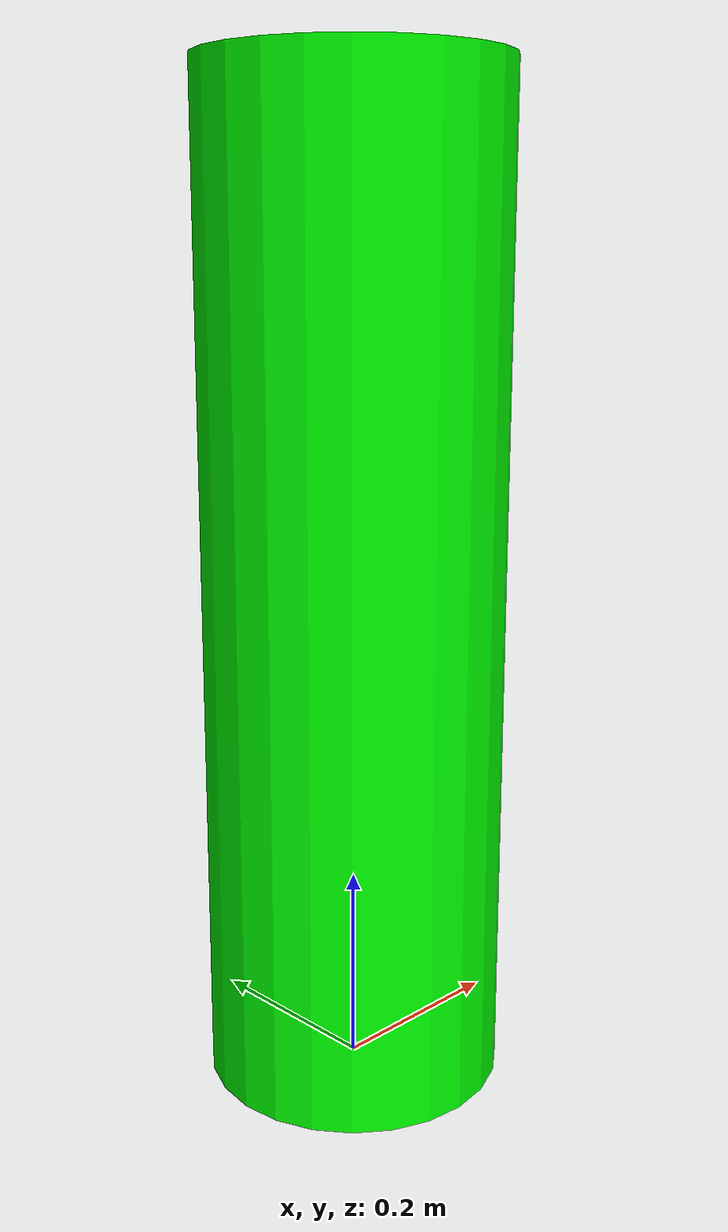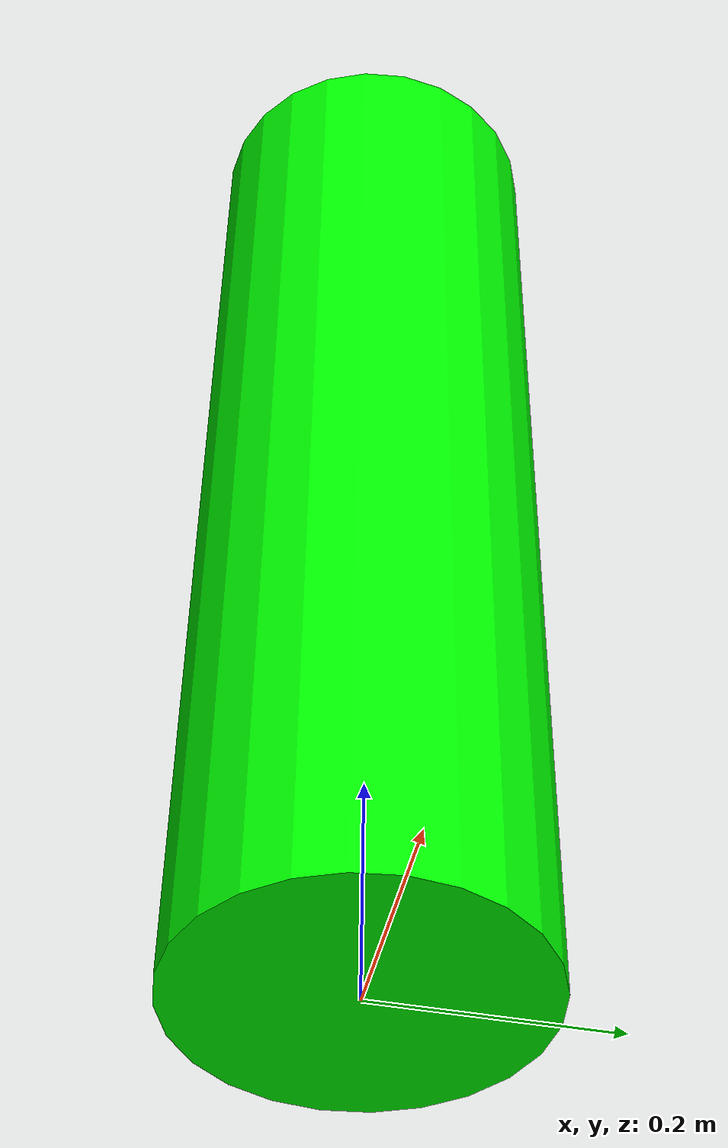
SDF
<?xml version="1.0" ?>
<sdf version="1.6">
  <model name="cylinder_model">
    <static>false</static> <!-- True if the cylinder is immovable -->
    <pose>0 0 0.5 0 0 0</pose> <!-- Initial position: x y z roll pitch yaw -->
    <link name="link">
      <inertial>
        <mass>1.0</mass> <!-- Mass of the cylinder -->
        <inertia>
          <ixx>0.01</ixx>
          <iyy>0.01</iyy>
          <izz>0.01</izz>
        </inertia>
      </inertial>
      <collision name="collision">
        <geometry>
          <cylinder>
            <radius>0.15</radius>  <!-- 30cm diameter (0.15m radius) -->
            <length>1.0</length>   <!-- Height of the cylinder -->
          </cylinder>
        </geometry>
        <surface>
          <contact>
            <ode/>
          </contact>
          <bounce/>
          <friction>
            <ode/>
          </friction>
        </surface>
      </collision>
      <visual name="visual">
        <geometry>
          <cylinder>
            <radius>0.15</radius> <!-- Same as collision radius -->
            <length>1.0</length>  <!-- Same as collision length -->
          </cylinder>
        </geometry>
        <material>
          <ambient>0 1 0 1</ambient> <!-- Color (Green) -->
          <diffuse>0 1 0 1</diffuse>
          <specular>0 0 0 1</specular>
        </material>
      </visual>
    </link>
  </model>
</sdf>
